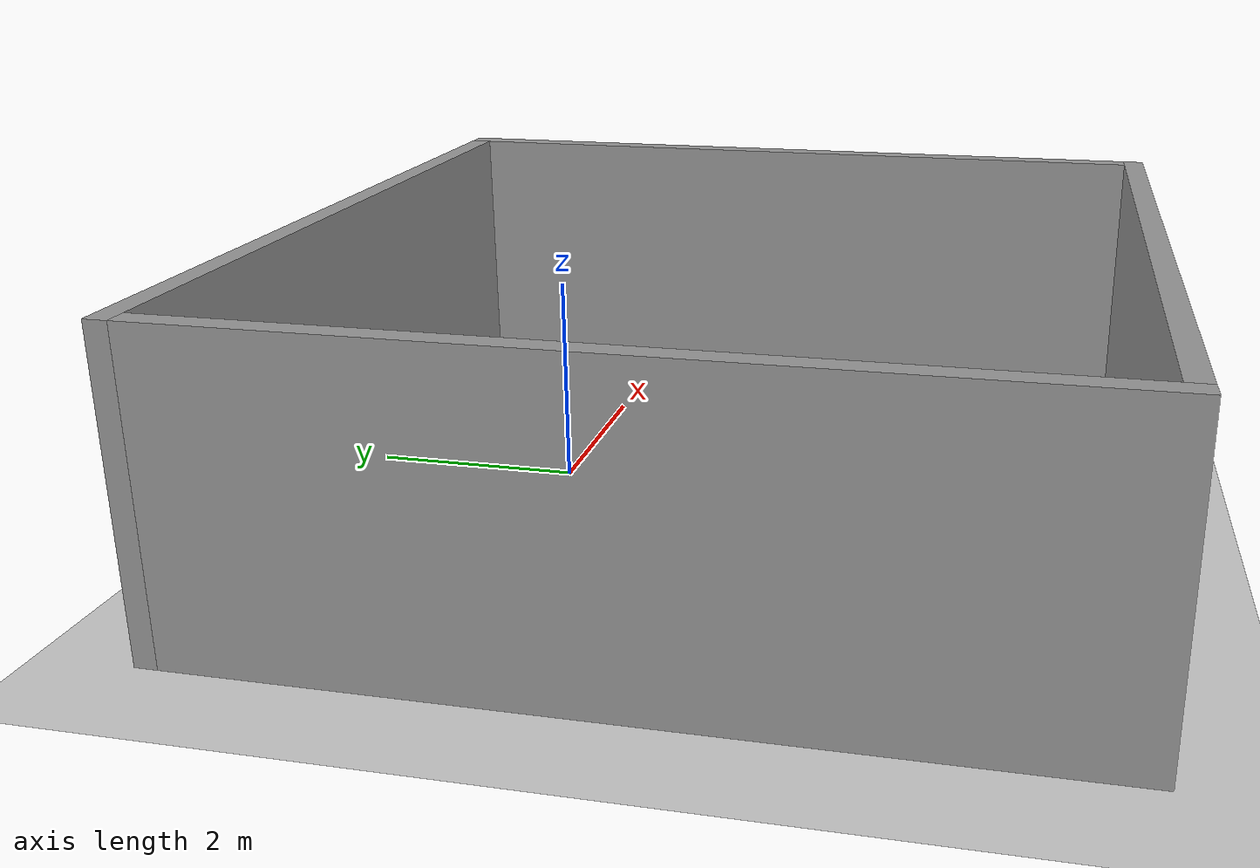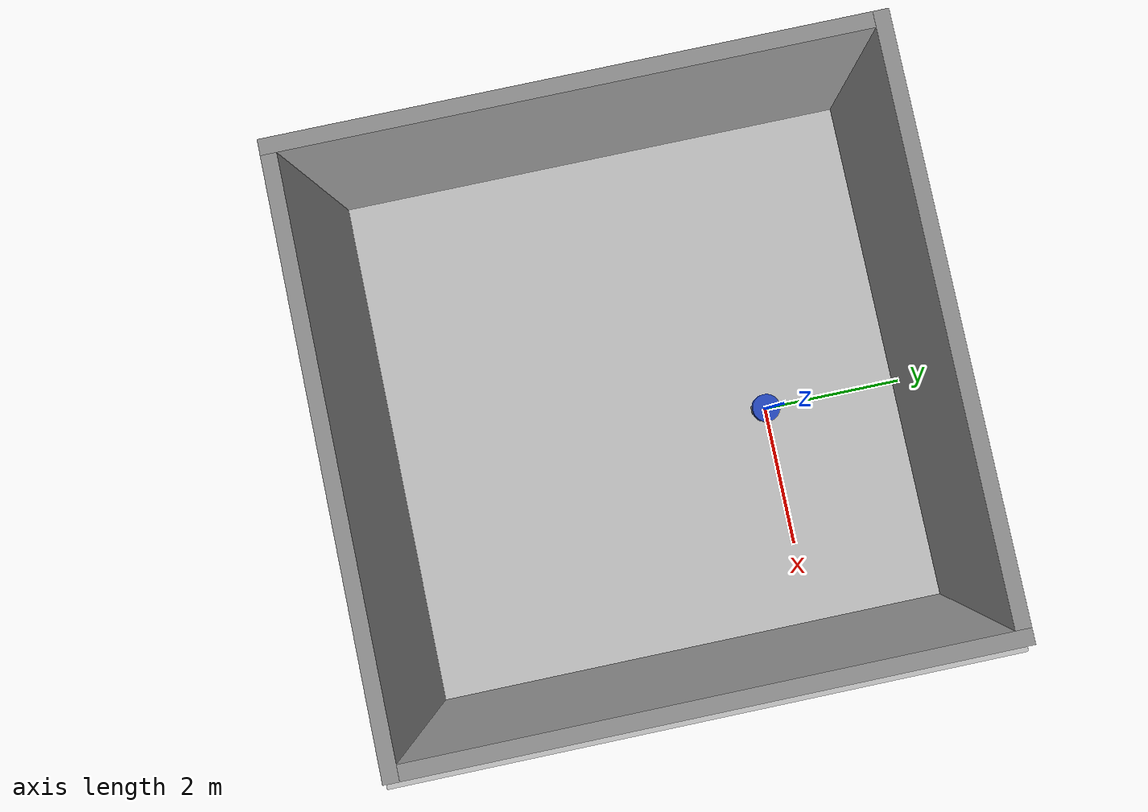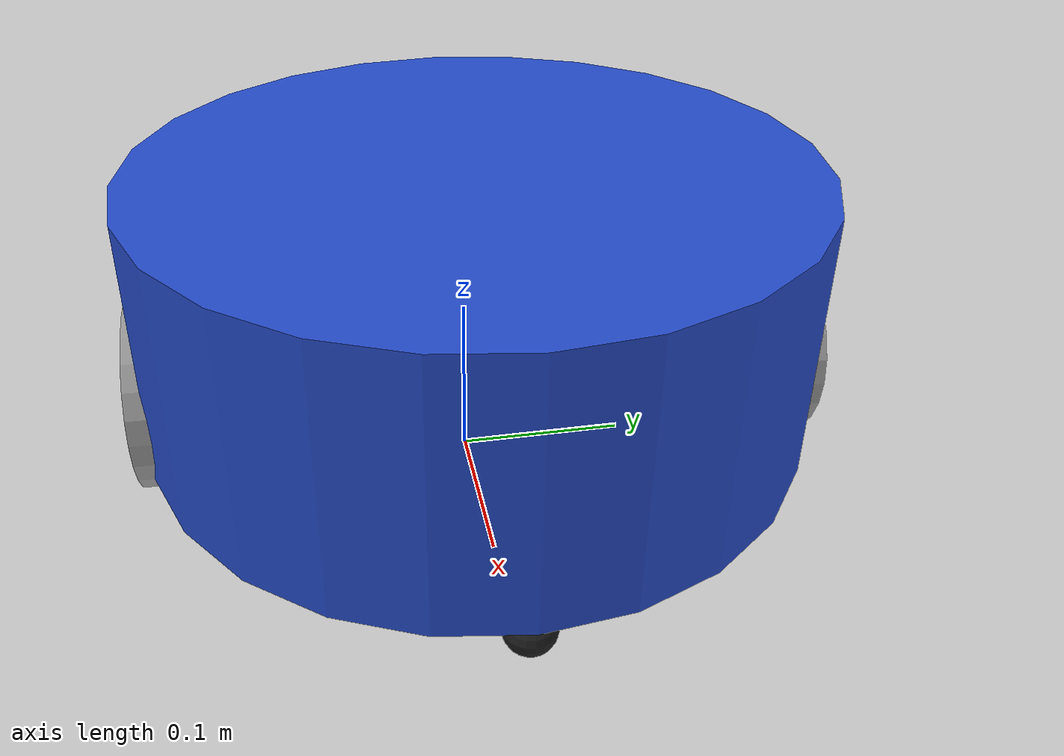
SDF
<sdf version="1.6">
 <world name="default">
  <light name="sun" type="directional">
   <pose>0 0 10 0 -0 0</pose>
   <diffuse>0.8 0.8 0.8 1</diffuse>
   <specular>0.2 0.2 0.2 1</specular>
   <attenuation>
    <range>1000</range>
    <constant>0.9</constant>
    <linear>0.01</linear>
    <quadratic>0.001</quadratic>
   </attenuation>
   <direction>-0.5 0.1 -0.9</direction>
  </light>
  <model name="ground_plane">
   <static>1</static>
   <link name="link">
    <collision name="collision">
     <geometry><plane><normal>0 0 1</normal><size>100 100</size></plane></geometry>
     <surface><friction><ode><mu>100</mu><mu2>50</mu2></ode></friction></surface>
    </collision>
    <visual name="visual">
     <cast_shadows>0</cast_shadows>
     <geometry><plane><normal>0 0 1</normal><size>100 100</size></plane></geometry>
     <material>
      <script><uri>file://media/materials/scripts/gazebo.material</uri><name>Gazebo/Grey</name></script>
     </material>
    </visual>
   </link>
  </model>
  <gravity>0 0 -9.8</gravity>
  <magnetic_field>6e-06 2.3e-05 -4.2e-05</magnetic_field>
  <atmosphere type="adiabatic"/>
  <physics name="default_physics" default="0" type="ode">
   <max_step_size>0.001</max_step_size>
   <real_time_factor>1</real_time_factor>
   <real_time_update_rate>1000</real_time_update_rate>
  </physics>
  <scene><ambient>0.4 0.4 0.4 1</ambient><background>0.7 0.7 0.7 1</background><shadows>1</shadows></scene>
  <audio><device>default</device></audio>
  <spherical_coordinates>
   <surface_model>EARTH_WGS84</surface_model>
   <latitude_deg>0</latitude_deg>
   <longitude_deg>0</longitude_deg>
   <elevation>0</elevation>
   <heading_deg>0</heading_deg>
  </spherical_coordinates>
  <model name="mrobot">
   <link name="base_footprint">
    <inertial>
     <pose>0 0 0.11 0 -0 0</pose>
     <mass>1</mass>
     <inertia><ixx>0.0121333</ixx><ixy>0</ixy><ixz>0</ixz><iyy>0.0121333</iyy><iyz>0</iyz><izz>0.02</izz></inertia>
    </inertial>
    <collision name="base_footprint_fixed_joint_lump__base_link_collision">
     <pose>0 0 0.11 0 -0 0</pose>
     <geometry><cylinder><length>0.16</length><radius>0.2</radius></cylinder></geometry>
    </collision>
    <visual name="base_footprint_visual">
     <geometry><box><size>0.001 0.001 0.001</size></box></geometry>
     <material><script><uri>__default__</uri><name>__default__</name></script></material>
    </visual>
    <visual name="base_footprint_fixed_joint_lump__base_link_visual_1">
     <pose>0 0 0.11 0 -0 0</pose>
     <geometry><cylinder><length>0.16</length><radius>0.2</radius></cylinder></geometry>
     <material>
      <script><name>Gazebo/Blue</name><uri>file://media/materials/scripts/gazebo.material</uri></script>
     </material>
    </visual>
   </link>
   <link name="back_caster_link">
    <pose>0.18 0 0.015 0 -0 0</pose>
    <inertial>
     <mass>0.2</mass>
     <inertia><ixx>1.8e-05</ixx><ixy>0</ixy><ixz>0</ixz><iyy>1.8e-05</iyy><iyz>0</iyz><izz>1.8e-05</izz></inertia>
    </inertial>
    <collision name="back_caster_link_collision">
     <geometry><sphere><radius>0.015</radius></sphere></geometry>
    </collision>
    <visual name="back_caster_link_visual">
     <geometry><sphere><radius>0.015</radius></sphere></geometry>
     <material>
      <script><name>Gazebo/Black</name><uri>file://media/materials/scripts/gazebo.material</uri></script>
     </material>
    </visual>
   </link>
   <joint name="back_caster_joint" type="revolute">
    <child>back_caster_link</child>
    <parent>base_footprint</parent>
    <axis>
     <xyz>0 1 0</xyz>
     <limit><lower>-1e+16</lower><upper>1e+16</upper></limit>
     <dynamics><spring_reference>0</spring_reference><spring_stiffness>0</spring_stiffness></dynamics>
     <use_parent_model_frame>1</use_parent_model_frame>
    </axis>
   </joint>
   <link name="front_caster_link">
    <pose>-0.18 0 0.015 0 -0 0</pose>
    <inertial>
     <mass>0.2</mass>
     <inertia><ixx>1.8e-05</ixx><ixy>0</ixy><ixz>0</ixz><iyy>1.8e-05</iyy><iyz>0</iyz><izz>1.8e-05</izz></inertia>
    </inertial>
    <collision name="front_caster_link_collision">
     <geometry><sphere><radius>0.015</radius></sphere></geometry>
    </collision>
    <visual name="front_caster_link_visual">
     <geometry><sphere><radius>0.015</radius></sphere></geometry>
     <material>
      <script><name>Gazebo/Black</name><uri>file://media/materials/scripts/gazebo.material</uri></script>
     </material>
    </visual>
   </link>
   <joint name="front_caster_joint" type="revolute">
    <child>front_caster_link</child>
    <parent>base_footprint</parent>
    <axis>
     <xyz>0 1 0</xyz>
     <limit><lower>-1e+16</lower><upper>1e+16</upper></limit>
     <dynamics><spring_reference>0</spring_reference><spring_stiffness>0</spring_stiffness></dynamics>
     <use_parent_model_frame>1</use_parent_model_frame>
    </axis>
   </joint>
   <link name="left_wheel_link">
    <pose>0 0.19 0.06 0 -0 0</pose>
    <inertial>
     <mass>0.2</mass>
     <inertia>
      <ixx>0.000190417</ixx>
      <ixy>0</ixy>
      <ixz>0</ixz>
      <iyy>0.000190417</iyy>
      <iyz>0</iyz>
      <izz>0.00036</izz>
     </inertia>
    </inertial>
    <collision name="left_wheel_link_collision">
     <pose>0 0 0 1.5708 -0 0</pose>
     <geometry><cylinder><length>0.025</length><radius>0.06</radius></cylinder></geometry>
    </collision>
    <visual name="left_wheel_link_visual">
     <pose>0 0 0 1.5708 -0 0</pose>
     <geometry><cylinder><length>0.025</length><radius>0.06</radius></cylinder></geometry>
     <material>
      <script><name>Gazebo/Gray</name><uri>file://media/materials/scripts/gazebo.material</uri></script>
     </material>
    </visual>
   </link>
   <joint name="left_wheel_joint" type="revolute">
    <child>left_wheel_link</child>
    <parent>base_footprint</parent>
    <axis>
     <xyz>0 1 0</xyz>
     <limit><lower>-1e+16</lower><upper>1e+16</upper></limit>
     <dynamics><spring_reference>0</spring_reference><spring_stiffness>0</spring_stiffness></dynamics>
     <use_parent_model_frame>1</use_parent_model_frame>
    </axis>
   </joint>
   <link name="right_wheel_link">
    <pose>0 -0.19 0.06 0 -0 0</pose>
    <inertial>
     <mass>0.2</mass>
     <inertia>
      <ixx>0.000190417</ixx>
      <ixy>0</ixy>
      <ixz>0</ixz>
      <iyy>0.000190417</iyy>
      <iyz>0</iyz>
      <izz>0.00036</izz>
     </inertia>
    </inertial>
    <collision name="right_wheel_link_collision">
     <pose>0 0 0 1.5708 -0 0</pose>
     <geometry><cylinder><length>0.025</length><radius>0.06</radius></cylinder></geometry>
    </collision>
    <visual name="right_wheel_link_visual">
     <pose>0 0 0 1.5708 -0 0</pose>
     <geometry><cylinder><length>0.025</length><radius>0.06</radius></cylinder></geometry>
     <material>
      <script><name>Gazebo/Gray</name><uri>file://media/materials/scripts/gazebo.material</uri></script>
     </material>
    </visual>
   </link>
   <joint name="right_wheel_joint" type="revolute">
    <child>right_wheel_link</child>
    <parent>base_footprint</parent>
    <axis>
     <xyz>0 1 0</xyz>
     <limit><lower>-1e+16</lower><upper>1e+16</upper></limit>
     <dynamics><spring_reference>0</spring_reference><spring_stiffness>0</spring_stiffness></dynamics>
     <use_parent_model_frame>1</use_parent_model_frame>
    </axis>
   </joint>
   <static>0</static>
   <plugin name="differential_drive_controller" filename="libgazebo_ros_diff_drive.so">
    <rosDebugLevel>Debug</rosDebugLevel>
    <publishWheelTF>1</publishWheelTF>
    <robotNamespace>/</robotNamespace>
    <publishTf>1</publishTf>
    <publishWheelJointState>1</publishWheelJointState>
    <alwaysOn>1</alwaysOn>
    <updateRate>100.0</updateRate>
    <legacyMode>1</legacyMode>
    <leftJoint>left_wheel_joint</leftJoint>
    <rightJoint>right_wheel_joint</rightJoint>
    <wheelSeparation>0.38</wheelSeparation>
    <wheelDiameter>0.12</wheelDiameter>
    <broadcastTF>1</broadcastTF>
    <wheelTorque>30</wheelTorque>
    <wheelAcceleration>1.8</wheelAcceleration>
    <commandTopic>cmd_vel</commandTopic>
    <odometryFrame>odom</odometryFrame>
    <odometryTopic>odom</odometryTopic>
    <robotBaseFrame>base_footprint</robotBaseFrame>
   </plugin>
   <pose>-0.003716 0.007459 0 0 0 -0.019239</pose>
  </model>
  <model name="grey_wall">
   <static>1</static>
   <link name="link">
    <pose>0 0 1.4 0 -0 0</pose>
    <collision name="collision"><geometry><box><size>7.5 0.2 2.8</size></box></geometry></collision>
    <visual name="visual">
     <cast_shadows>0</cast_shadows>
     <geometry><box><size>7.5 0.2 2.8</size></box></geometry>
     <material>
      <script>
       <uri>model://grey_wall/materials/scripts</uri>
       <uri>model://grey_wall/materials/textures</uri>
       <name>vrc/grey_wall</name>
      </script>
     </material>
    </visual>
   </link>
   <pose>-0.602651 2.011 0 0 -0 0</pose>
  </model>
  <model name="grey_wall_clone">
   <static>1</static>
   <link name="link">
    <pose>0 0 1.4 0 -0 0</pose>
    <collision name="collision"><geometry><box><size>7.5 0.2 2.8</size></box></geometry></collision>
    <visual name="visual">
     <cast_shadows>0</cast_shadows>
     <geometry><box><size>7.5 0.2 2.8</size></box></geometry>
     <material>
      <script>
       <uri>model://grey_wall/materials/scripts</uri>
       <uri>model://grey_wall/materials/textures</uri>
       <name>vrc/grey_wall</name>
      </script>
     </material>
    </visual>
   </link>
   <pose>-4.25265 -1.839 0 0 0 -1.5708</pose>
  </model>
  <model name="grey_wall_clone_0_clone">
   <static>1</static>
   <link name="link">
    <pose>0 0 1.4 0 -0 0</pose>
    <collision name="collision"><geometry><box><size>7.5 0.2 2.8</size></box></geometry></collision>
    <visual name="visual">
     <cast_shadows>0</cast_shadows>
     <geometry><box><size>7.5 0.2 2.8</size></box></geometry>
     <material>
      <script>
       <uri>model://grey_wall/materials/scripts</uri>
       <uri>model://grey_wall/materials/textures</uri>
       <name>vrc/grey_wall</name>
      </script>
     </material>
    </visual>
   </link>
   <pose>3.24735 -1.639 0 0 0 -1.5708</pose>
  </model>
  <model name="grey_wall_clone_0_clone_clone">
   <static>1</static>
   <link name="link">
    <pose>0 0 1.4 0 -0 0</pose>
    <collision name="collision"><geometry><box><size>7.5 0.2 2.8</size></box></geometry></collision>
    <visual name="visual">
     <cast_shadows>0</cast_shadows>
     <geometry><box><size>7.5 0.2 2.8</size></box></geometry>
     <material>
      <script>
       <uri>model://grey_wall/materials/scripts</uri>
       <uri>model://grey_wall/materials/textures</uri>
       <name>vrc/grey_wall</name>
      </script>
     </material>
    </visual>
   </link>
   <pose>-0.402648 -5.489 0 0 -0 0</pose>
  </model>
 </world>
</sdf>
